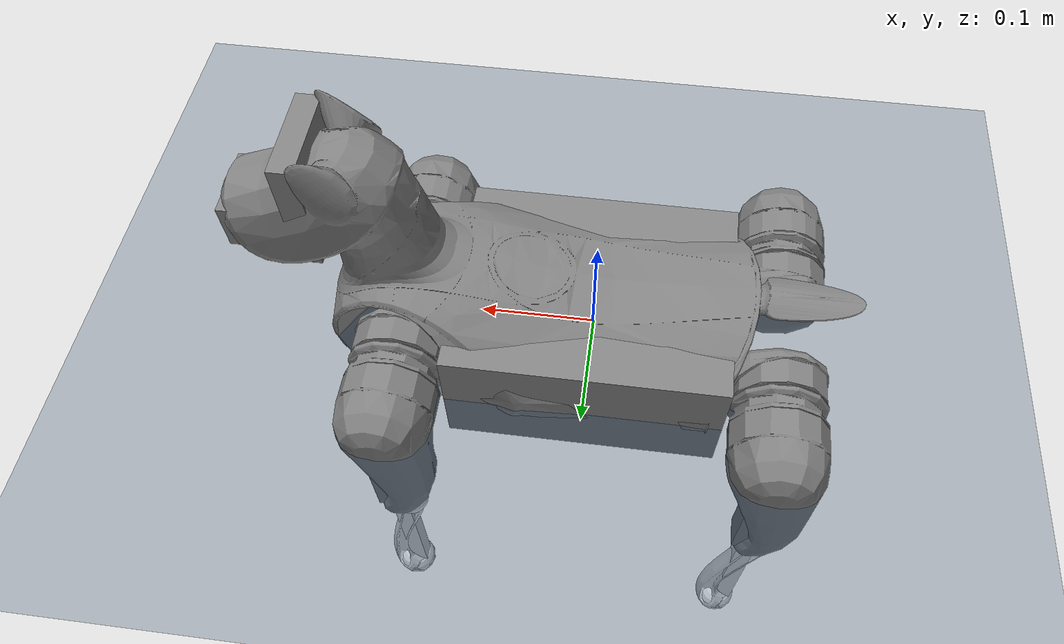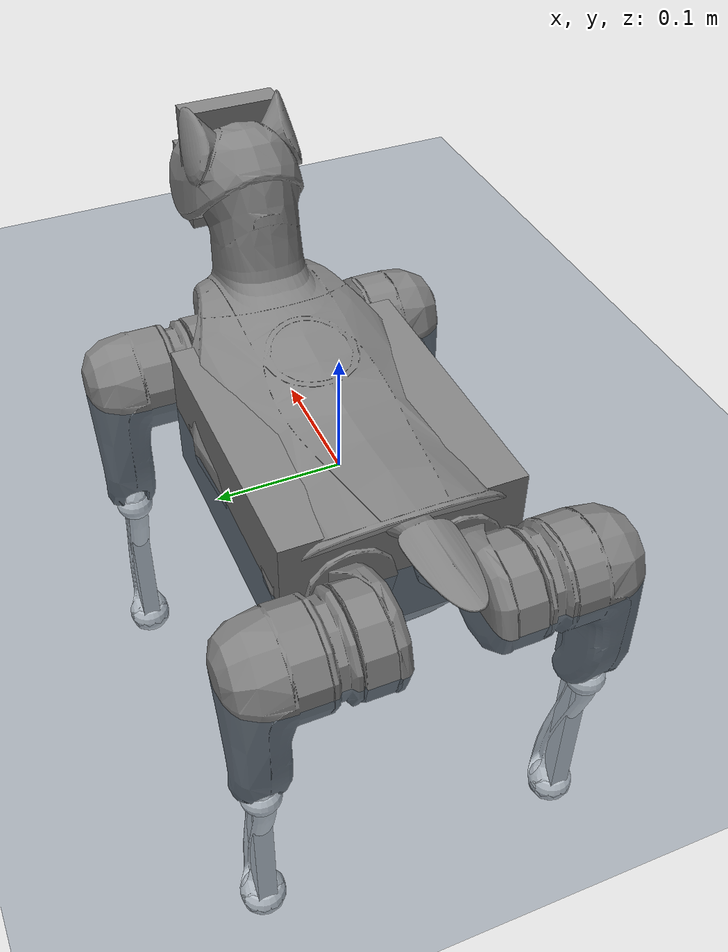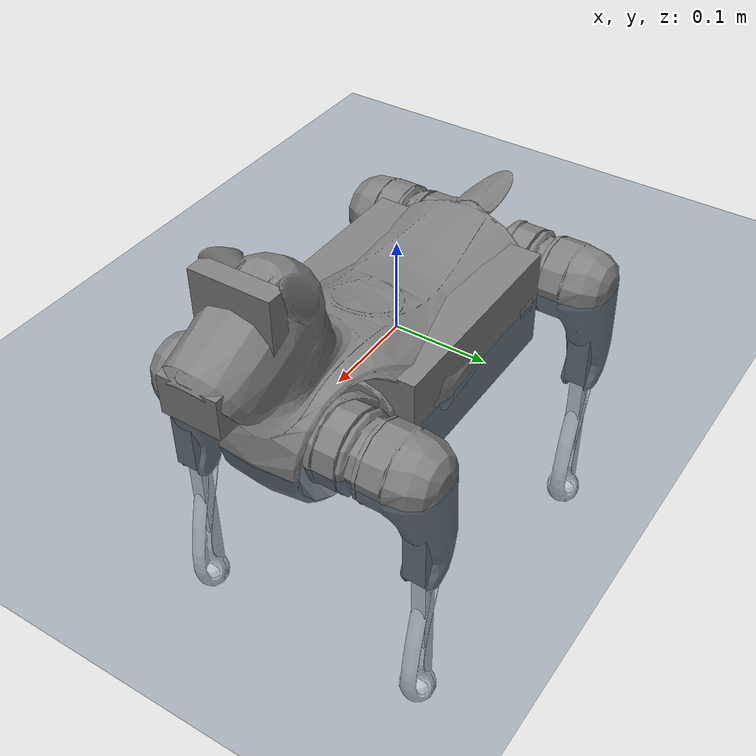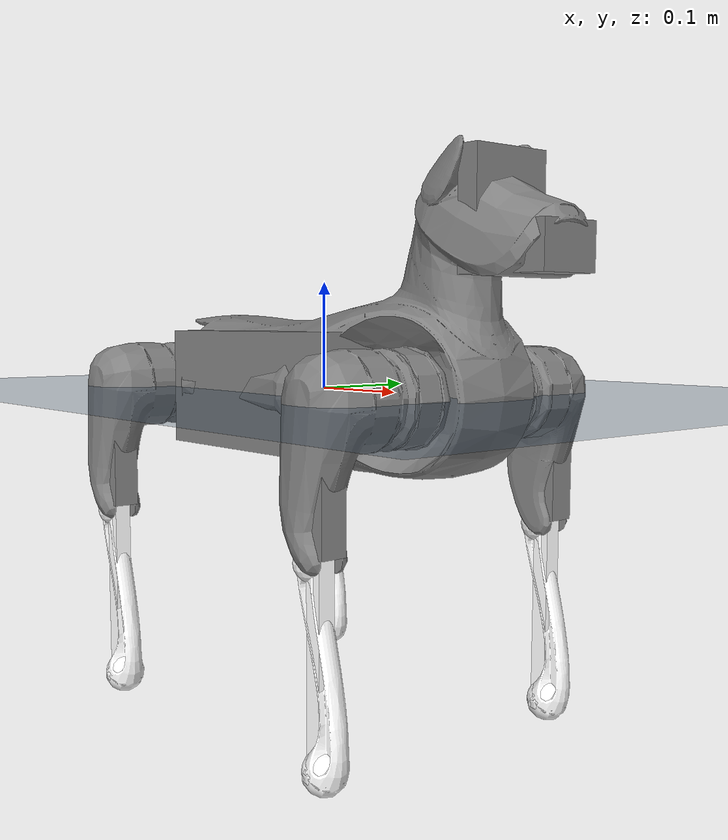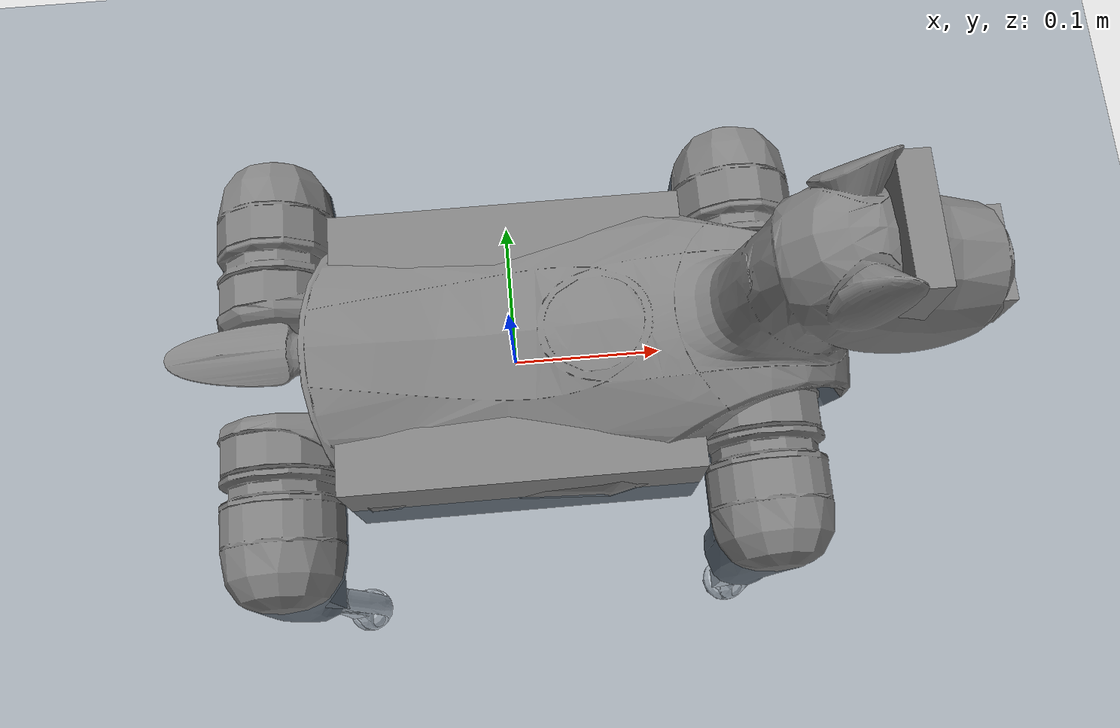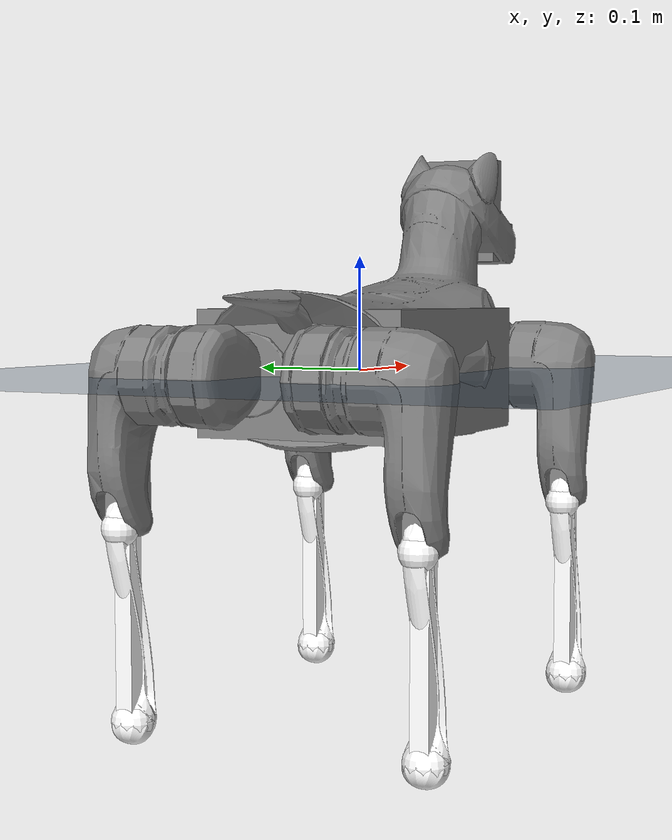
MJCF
<mujoco model="cyber_dog">
  <compiler angle="radian" meshdir="../meshes" texturedir="../meshes" />
  <option timestep="0.005" iterations="50" solver="Newton" gravity="0 0 -9.81">
      <flag contact="enable"/>
  </option>
  <default>
      <geom solref="0.004 1" solimp="0.95 0.99 0.001" margin="0.001" />
      <joint armature="0.005" damping="0.01" frictionloss="0.1"/>
      <!-- ^actual values -->
  </default>
  <asset>
    <mesh name="body" file="body.obj" />
    <mesh name="abad" file="abad.obj" />
    <mesh name="hip_mirror" file="hip_mirror.obj" />
    <mesh name="knee" file="knee.obj" />
    <mesh name="hip" file="hip.obj" />
  <texture type="skybox" builtin="gradient" rgb1=".3 .5 .7" rgb2="0 0 0" width="32" height="32" /><texture name="grid" type="2d" builtin="checker" width="512" height="512" rgb1=".1 .2 .3" rgb2=".2 .3 .4" /><material name="grid_mat" texture="grid" texrepeat="1 1" texuniform="true" reflectance="0.2" /></asset>
  <worldbody>
    <geom name="floor" type="plane" size="50 50 0.1" material="grid_mat" /><body name="base">
      <freejoint name="root_joint" /><geom name="base_visual_0" size="0.0005 0.0005 0.0005" type="box" contype="0" conaffinity="0" group="1" density="0" />
      <body name="trunk">
        <inertial pos="0.0273 -0.000242 0.0143" quat="0.539649 0.4383 0.400084 0.597165" mass="4.03" diaginertia="0.0517032 0.0514545 0.0153423" />
        <geom name="trunk_visual_0" type="mesh" contype="0" conaffinity="0" group="1" density="0" mesh="body" />
        <geom name="trunk_collision_0" size="0.118 0.095 0.0545" type="box" />
        <body name="imu_link" pos="0.0334 -0.0172765 0.0510469">
          <inertial pos="0 0 0" mass="0.001" diaginertia="0.0001 0.0001 0.0001" />
          <geom name="imu_link_visual_0" size="0.0005 0.0005 0.0005" type="box" contype="0" conaffinity="0" group="1" density="0" />
          <geom name="imu_link_collision_0" size="0.0005 0.0005 0.0005" type="box" />
        </body>
        <body name="FR_hip" pos="0.164 -0.042 0">
          <inertial pos="-0.00392 -0.015 -0.000306" quat="0.571911 0.557781 0.436967 0.413351" mass="0.354" diaginertia="0.00028385 0.000232925 0.000182225" />
          <joint name="FR_hip_joint" pos="0 0 0" axis="1 0 0" range="-0.680678 0.680678" actuatorfrcrange="-12.0001 12.0001" damping="0.05" frictionloss="0.2" />
          <geom name="FR_hip_visual_0" quat="0 1 0 0" type="mesh" contype="0" conaffinity="0" group="1" density="0" mesh="abad" />
          <body name="FR_hip_rotor_inertia" pos="-0.0642303 0 0">
            <inertial pos="0 0 0" quat="0.5 0.5 -0.5 0.5" mass="0.0567" diaginertia="4.78e-05 2.53e-05 2.53e-05" />
          </body>
          <body name="FR_hip_rotor" pos="0 -0.059 0" />
          <body name="FR_thigh" pos="0 -0.094 0" quat="0 0 0 1">
            <inertial pos="0.00212 -0.0212 -0.0184" quat="0.577887 0.0570388 -0.130899 0.803529" mass="0.482" diaginertia="0.00104386 0.00100885 0.000287289" />
            <joint name="FR_thigh_joint" pos="0 0 0" axis="0 1 0" range="-2.79253 1.32645" actuatorfrcrange="-12.0001 12.0001" damping="0.05" frictionloss="0.2" />
            <geom name="FR_thigh_visual_0" type="mesh" contype="0" conaffinity="0" group="1" density="0" mesh="hip_mirror" />
            <geom name="FR_thigh_collision_0" size="0.06 0.0125 0.017" pos="0 0 -0.06" quat="0.707107 0 0.707107 0" type="box" />
            <body name="FR_thigh_rotor" pos="0 -0.07577 0">
              <inertial pos="0 0 0" quat="0.5 0.5 -0.5 0.5" mass="0.0567" diaginertia="4.78e-05 2.53e-05 2.53e-05" />
            </body>
            <body name="FR_knee_rotor" pos="0 -0.0342303 0">
              <inertial pos="0 0 0" quat="0.5 0.5 -0.5 0.5" mass="0.0567" diaginertia="4.78e-05 2.53e-05 2.53e-05" />
            </body>
            <body name="FR_calf" pos="0 0 -0.12">
              <inertial pos="-0.0006 4.72e-05 -0.0893" quat="0.708692 0.0124618 0.0131697 0.705285" mass="0.116" diaginertia="0.000674001 0.000668859 1.45399e-05" />
              <joint name="FR_calf_joint" pos="0 0 0" axis="0 1 0" range="0.523599 2.53073" actuatorfrcrange="-12.0001 12.0001" damping="0.05" frictionloss="0.2" />
              <geom name="FR_calf_visual_0" type="mesh" contype="0" conaffinity="0" group="1" density="0" rgba="1 1 1 1" mesh="knee" />
              <geom name="FR_calf_collision_0" size="0.008 0.008 0.091705" pos="0 0 -0.091705" quat="0 0 1 0" type="box" rgba="1 1 1 1" />
              <geom name="FR_calf_collision_1" size="0.016" pos="0.01 0 -0.007" quat="0 0 1 0" rgba="1 1 1 1" />
              <body name="FR_foot" pos="-0.0055 0 -0.17391">
                <inertial pos="0 0 0" mass="0.06" diaginertia="9.6e-06 9.6e-06 9.6e-06" />
                <geom name="FR_foot_visual_0" size="0.009" contype="0" conaffinity="0" group="1" density="0" rgba="1 1 1 1" />
                <geom name="FR_foot_collision_0" size="0.019" rgba="1 1 1 1" />
              </body>
            </body>
          </body>
        </body>
        <body name="FL_hip" pos="0.164 0.042 0">
          <inertial pos="-0.00392 0.015 -0.000306" quat="0.413351 0.436967 0.557781 0.571911" mass="0.354" diaginertia="0.00028385 0.000232925 0.000182225" />
          <joint name="FL_hip_joint" pos="0 0 0" axis="1 0 0" range="-0.680678 0.680678" actuatorfrcrange="-12.0001 12.0001" damping="0.05" frictionloss="0.2" />
          <geom name="FL_hip_visual_0" type="mesh" contype="0" conaffinity="0" group="1" density="0" mesh="abad" />
          <body name="FL_hip_rotor_inertia" pos="-0.0642303 0 0">
            <inertial pos="0 0 0" quat="0.5 0.5 -0.5 0.5" mass="0.0567" diaginertia="4.78e-05 2.53e-05 2.53e-05" />
          </body>
          <body name="FL_hip_rotor" pos="0 0.059 0" />
          <body name="FL_thigh" pos="0 0.094 0" quat="0 0 0 1">
            <inertial pos="0.00212 0.0212 -0.0184" quat="0.803529 -0.130899 0.0570388 0.577887" mass="0.482" diaginertia="0.00104386 0.00100885 0.000287289" />
            <joint name="FL_thigh_joint" pos="0 0 0" axis="0 1 0" range="-2.79253 1.32645" actuatorfrcrange="-12.0001 12.0001" damping="0.05" frictionloss="0.2" />
            <geom name="FL_thigh_visual_0" type="mesh" contype="0" conaffinity="0" group="1" density="0" mesh="hip" />
            <geom name="FL_thigh_collision_0" size="0.06 0.0125 0.017" pos="0 0 -0.06" quat="0.707107 0 0.707107 0" type="box" />
            <body name="FL_thigh_rotor" pos="0 0.07577 0">
              <inertial pos="0 0 0" quat="0.5 0.5 -0.5 0.5" mass="0.0567" diaginertia="4.78e-05 2.53e-05 2.53e-05" />
            </body>
            <body name="FL_knee_rotor" pos="0 0.0342303 0">
              <inertial pos="0 0 0" quat="0.5 0.5 -0.5 0.5" mass="0.0567" diaginertia="4.78e-05 2.53e-05 2.53e-05" />
            </body>
            <body name="FL_calf" pos="0 0 -0.12">
              <inertial pos="-0.0006 4.72e-05 -0.0893" quat="0.708692 0.0124618 0.0131697 0.705285" mass="0.116" diaginertia="0.000674001 0.000668859 1.45399e-05" />
              <joint name="FL_calf_joint" pos="0 0 0" axis="0 1 0" range="0.523599 2.53073" actuatorfrcrange="-12.0001 12.0001" damping="0.05" frictionloss="0.2" />
              <geom name="FL_calf_visual_0" type="mesh" contype="0" conaffinity="0" group="1" density="0" rgba="1 1 1 1" mesh="knee" />
              <geom name="FL_calf_collision_0" size="0.008 0.008 0.091705" pos="0 0 -0.091705" quat="0 0 1 0" type="box" rgba="1 1 1 1" />
              <geom name="FL_calf_collision_1" size="0.016" pos="0.01 0 -0.007" quat="0 0 1 0" rgba="1 1 1 1" />
              <body name="FL_foot" pos="-0.0055 0 -0.17391">
                <inertial pos="0 0 0" mass="0.06" diaginertia="9.6e-06 9.6e-06 9.6e-06" />
                <geom name="FL_foot_visual_0" size="0.009" contype="0" conaffinity="0" group="1" density="0" rgba="1 1 1 1" />
                <geom name="FL_foot_collision_0" size="0.019" rgba="1 1 1 1" />
              </body>
            </body>
          </body>
        </body>
        <body name="RR_hip" pos="-0.164 -0.042 0">
          <inertial pos="0.00392 -0.015 -0.000306" quat="0.436967 0.413351 0.571911 0.557781" mass="0.354" diaginertia="0.00028385 0.000232925 0.000182225" />
          <joint name="RR_hip_joint" pos="0 0 0" axis="1 0 0" range="-0.680678 0.680678" actuatorfrcrange="-12.0001 12.0001" damping="0.05" frictionloss="0.2" />
          <geom name="RR_hip_visual_0" quat="0 0 0 -1" type="mesh" contype="0" conaffinity="0" group="1" density="0" mesh="abad" />
          <body name="RR_hip_rotor_inertia" pos="0.0642303 0 0">
            <inertial pos="0 0 0" quat="0.5 0.5 -0.5 0.5" mass="0.0567" diaginertia="4.78e-05 2.53e-05 2.53e-05" />
          </body>
          <body name="RR_hip_rotor" pos="0 -0.059 0" />
          <body name="RR_thigh" pos="0 -0.094 0" quat="0 0 0 1">
            <inertial pos="0.00212 -0.0212 -0.0184" quat="0.577887 0.0570388 -0.130899 0.803529" mass="0.482" diaginertia="0.00104386 0.00100885 0.000287289" />
            <joint name="RR_thigh_joint" pos="0 0 0" axis="0 1 0" range="-3.14159 0.977384" actuatorfrcrange="-12.0001 12.0001" damping="0.05" frictionloss="0.2" />
            <geom name="RR_thigh_visual_0" type="mesh" contype="0" conaffinity="0" group="1" density="0" mesh="hip_mirror" />
            <geom name="RR_thigh_collision_0" size="0.06 0.0125 0.017" pos="0 0 -0.06" quat="0.707107 0 0.707107 0" type="box" />
            <body name="RR_thigh_rotor" pos="0 -0.07577 0">
              <inertial pos="0 0 0" quat="0.5 0.5 -0.5 0.5" mass="0.0567" diaginertia="4.78e-05 2.53e-05 2.53e-05" />
            </body>
            <body name="RR_knee_rotor" pos="0 -0.0342303 0">
              <inertial pos="0 0 0" quat="0.5 0.5 -0.5 0.5" mass="0.0567" diaginertia="4.78e-05 2.53e-05 2.53e-05" />
            </body>
            <body name="RR_calf" pos="0 0 -0.12">
              <inertial pos="-0.0006 4.72e-05 -0.0893" quat="0.708692 0.0124618 0.0131697 0.705285" mass="0.116" diaginertia="0.000674001 0.000668859 1.45399e-05" />
              <joint name="RR_calf_joint" pos="0 0 0" axis="0 1 0" range="0.523599 2.53073" actuatorfrcrange="-12.0001 12.0001" damping="0.05" frictionloss="0.2" />
              <geom name="RR_calf_visual_0" type="mesh" contype="0" conaffinity="0" group="1" density="0" rgba="1 1 1 1" mesh="knee" />
              <geom name="RR_calf_collision_0" size="0.008 0.008 0.091705" pos="0 0 -0.091705" quat="0 0 1 0" type="box" rgba="1 1 1 1" />
              <geom name="RR_calf_collision_1" size="0.016" pos="0.01 0 -0.007" quat="0 0 1 0" rgba="1 1 1 1" />
              <body name="RR_foot" pos="-0.0055 0 -0.17391">
                <inertial pos="0 0 0" mass="0.06" diaginertia="9.6e-06 9.6e-06 9.6e-06" />
                <geom name="RR_foot_visual_0" size="0.009" contype="0" conaffinity="0" group="1" density="0" rgba="1 1 1 1" />
                <geom name="RR_foot_collision_0" size="0.019" rgba="1 1 1 1" />
              </body>
            </body>
          </body>
        </body>
        <body name="RL_hip" pos="-0.164 0.042 0">
          <inertial pos="0.00392 0.015 -0.000306" quat="0.557781 0.571911 0.413351 0.436967" mass="0.354" diaginertia="0.00028385 0.000232925 0.000182225" />
          <joint name="RL_hip_joint" pos="0 0 0" axis="1 0 0" range="-0.680678 0.680678" actuatorfrcrange="-12.0001 12.0001" damping="0.05" frictionloss="0.2" />
          <geom name="RL_hip_visual_0" quat="0 0 1 0" type="mesh" contype="0" conaffinity="0" group="1" density="0" mesh="abad" />
          <body name="RL_hip_rotor_inertia" pos="0.0642303 0 0">
            <inertial pos="0 0 0" quat="0.5 0.5 -0.5 0.5" mass="0.0567" diaginertia="4.78e-05 2.53e-05 2.53e-05" />
          </body>
          <body name="RL_hip_rotor" pos="0 0.059 0" />
          <body name="RL_thigh" pos="0 0.094 0" quat="0 0 0 1">
            <inertial pos="0.00212 0.0212 -0.0184" quat="0.803529 -0.130899 0.0570388 0.577887" mass="0.482" diaginertia="0.00104386 0.00100885 0.000287289" />
            <joint name="RL_thigh_joint" pos="0 0 0" axis="0 1 0" range="-3.14159 0.977384" actuatorfrcrange="-12.0001 12.0001" damping="0.05" frictionloss="0.2" />
            <geom name="RL_thigh_visual_0" type="mesh" contype="0" conaffinity="0" group="1" density="0" mesh="hip" />
            <geom name="RL_thigh_collision_0" size="0.06 0.0125 0.017" pos="0 0 -0.06" quat="0.707107 0 0.707107 0" type="box" />
            <body name="RL_thigh_rotor" pos="0 0.07577 0">
              <inertial pos="0 0 0" quat="0.5 0.5 -0.5 0.5" mass="0.0567" diaginertia="4.78e-05 2.53e-05 2.53e-05" />
            </body>
            <body name="RL_knee_rotor" pos="0 0.0342303 0">
              <inertial pos="0 0 0" quat="0.5 0.5 -0.5 0.5" mass="0.0567" diaginertia="4.78e-05 2.53e-05 2.53e-05" />
            </body>
            <body name="RL_calf" pos="0 0 -0.12">
              <inertial pos="-0.0006 4.72e-05 -0.0893" quat="0.708692 0.0124618 0.0131697 0.705285" mass="0.116" diaginertia="0.000674001 0.000668859 1.45399e-05" />
              <joint name="RL_calf_joint" pos="0 0 0" axis="0 1 0" range="0.523599 2.53073" actuatorfrcrange="-12.0001 12.0001" damping="0.05" frictionloss="0.2" />
              <geom name="RL_calf_visual_0" type="mesh" contype="0" conaffinity="0" group="1" density="0" rgba="1 1 1 1" mesh="knee" />
              <geom name="RL_calf_collision_0" size="0.008 0.008 0.091705" pos="0 0 -0.091705" quat="0 0 1 0" type="box" rgba="1 1 1 1" />
              <geom name="RL_calf_collision_1" size="0.016" pos="0.01 0 -0.007" quat="0 0 1 0" rgba="1 1 1 1" />
              <body name="RL_foot" pos="-0.0055 0 -0.17391">
                <inertial pos="0 0 0" mass="0.06" diaginertia="9.6e-06 9.6e-06 9.6e-06" />
                <geom name="RL_foot_visual_0" size="0.009" contype="0" conaffinity="0" group="1" density="0" rgba="1 1 1 1" />
                <geom name="RL_foot_collision_0" size="0.019" rgba="1 1 1 1" />
              </body>
            </body>
          </body>
        </body>
        <body name="head">
          <geom name="head_collision_0" size="0.038 0.03 0.02" pos="0.256 0 0.12" type="box" />
          <geom name="head_collision_1" size="0.01 0.04 0.05" pos="0.225 0 0.15" type="box" />
        </body>
      </body>
    <camera name="track" mode="trackcom" pos="-0.5 0 0.5" xyaxes="0 -1 0 0 0 1" /></body>
  <camera name="isaac_view" pos="1.5 1.5 0.5" mode="targetbody" target="base" />
    <body name="isaac_target_body" pos="0.0 0.0 0.5">
    </body>
    <camera name="static_isaac_view" pos="1.5 1.5 0.5" mode="targetbody" target="isaac_target_body"/>
    </worldbody>
<visual><headlight diffuse="0.6 0.6 0.6" ambient="0.3 0.3 0.3" /><rgba haze="0.15 0.25 0.35 1" /></visual><actuator><motor name="FL_hip_joint_motor" joint="FL_hip_joint" gear="1" ctrllimited="false" /><motor name="FL_thigh_joint_motor" joint="FL_thigh_joint" gear="1" ctrllimited="false" /><motor name="FL_calf_joint_motor" joint="FL_calf_joint" gear="1" ctrllimited="false" /><motor name="FR_hip_joint_motor" joint="FR_hip_joint" gear="1" ctrllimited="false" /><motor name="FR_thigh_joint_motor" joint="FR_thigh_joint" gear="1" ctrllimited="false" /><motor name="FR_calf_joint_motor" joint="FR_calf_joint" gear="1" ctrllimited="false" /><motor name="RL_hip_joint_motor" joint="RL_hip_joint" gear="1" ctrllimited="false" /><motor name="RL_thigh_joint_motor" joint="RL_thigh_joint" gear="1" ctrllimited="false" /><motor name="RL_calf_joint_motor" joint="RL_calf_joint" gear="1" ctrllimited="false" /><motor name="RR_hip_joint_motor" joint="RR_hip_joint" gear="1" ctrllimited="false" /><motor name="RR_thigh_joint_motor" joint="RR_thigh_joint" gear="1" ctrllimited="false" /><motor name="RR_calf_joint_motor" joint="RR_calf_joint" gear="1" ctrllimited="false" /></actuator></mujoco>
